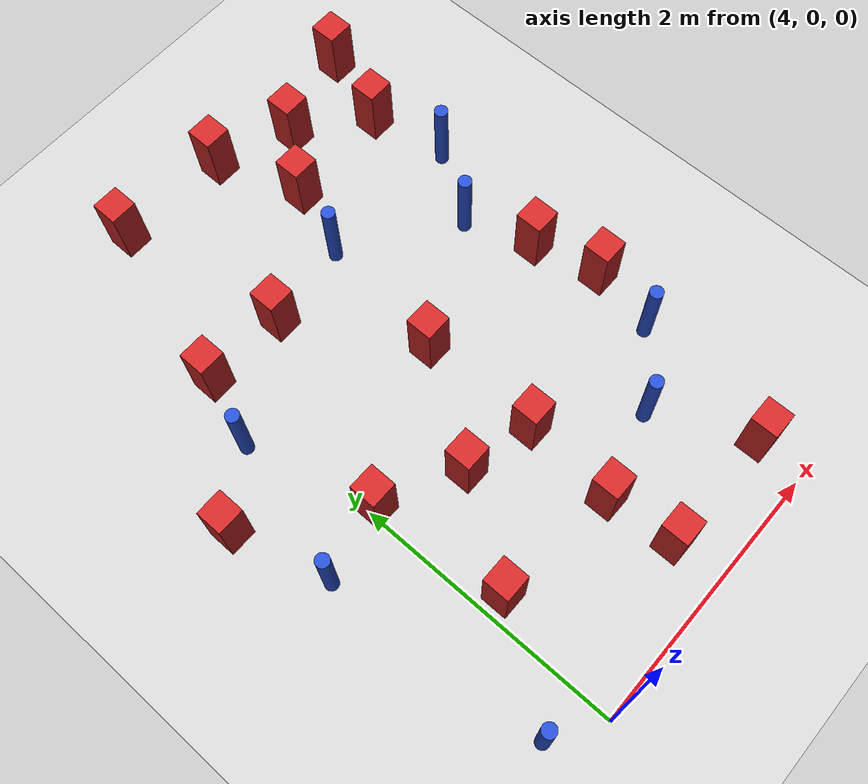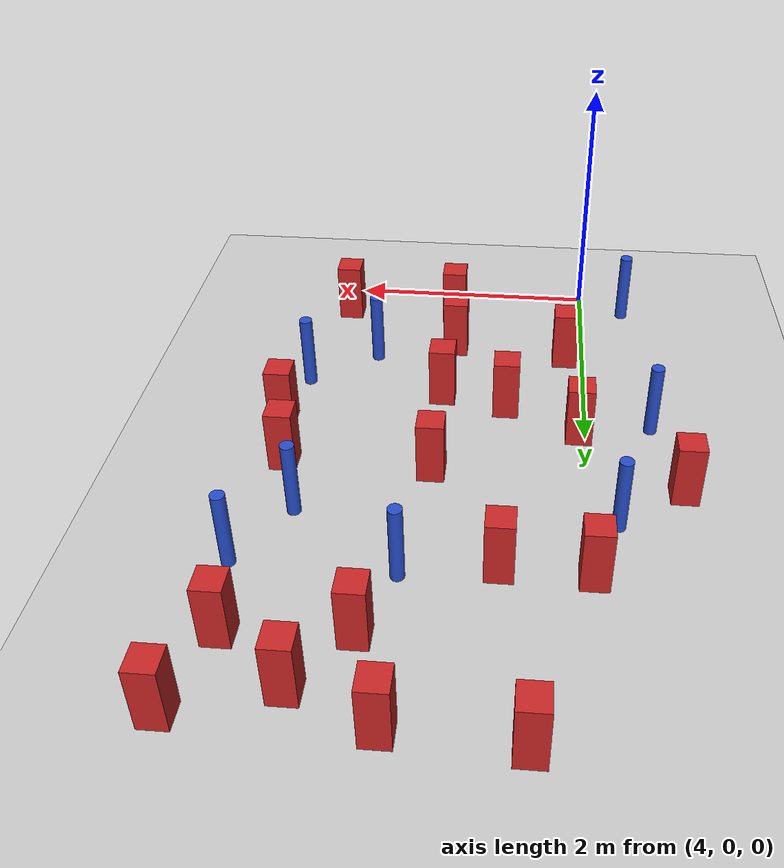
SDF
<sdf version="1.6">
 <world name="default">
  <model name="ground_plane">
   <static>1</static>
   <link name="link">
    <collision name="collision">
     <geometry><plane><normal>0 0 1</normal><size>100 100</size></plane></geometry>
     <surface><friction><ode><mu>100</mu><mu2>50</mu2></ode></friction></surface>
    </collision>
    <visual name="visual">
     <cast_shadows>0</cast_shadows>
     <geometry><plane><normal>0 0 1</normal><size>100 100</size></plane></geometry>
     <material>
      <ambient>1.0 1.0 1.0 1.0</ambient>
      <diffuse>0.8 0.8 0.8 1.0</diffuse>
      <specular>0.01 0.01 0.01 1.000000</specular>
     </material>
    </visual>
   </link>
  </model>
  <model name="square_post_obstacle8">
   <static>true</static>
   <pose>6.05506453243 0.368401354186 1.91545236811e-07 -7.35059704564e-06 1.12565212e-07 2.39332434364e-05</pose>
   <link name="link">
    <pose>0 0 0.25 0 -0 0</pose>
    <inertial>
     <mass>100</mass>
     <inertia>
      <ixx>0.166667</ixx>
      <ixy>0</ixy>
      <ixz>0</ixz>
      <iyy>0.166667</iyy>
      <iyz>0</iyz>
      <izz>0.166667</izz>
     </inertia>
    </inertial>
    <collision name="collision"><geometry><box><size>.2 .2 .5</size></box></geometry></collision>
    <visual name="visual">
     <geometry><box><size>.2 .2 .5</size></box></geometry>
     <material>
      <script><name>Gazebo/Red</name><uri>file://media/materials/scripts/gazebo.material</uri></script>
     </material>
    </visual>
   </link>
  </model>
  <model name="pole_obstacle36">
   <static>true</static>
   <pose>3.79349859983 2.92689420763 7.38925637345e-09 -8.47170692798e-08 1.24976764939e-08 -1.74513093025e-07</pose>
   <link name="link">
    <pose>0 0 0.3 0 -0 0</pose>
    <inertial>
     <mass>1</mass>
     <inertia><ixx>0.145833</ixx><ixy>0</ixy><ixz>0</ixz><iyy>0.145833</iyy><iyz>0</iyz><izz>0.125</izz></inertia>
    </inertial>
    <collision name="collision">
     <geometry><cylinder><radius>0.05</radius><length>.6</length></cylinder></geometry>
    </collision>
    <visual name="visual">
     <geometry><cylinder><radius>0.05</radius><length>.6</length></cylinder></geometry>
     <material>
      <script><name>Gazebo/Blue</name><uri>file://media/materials/scripts/gazebo.material</uri></script>
     </material>
    </visual>
   </link>
  </model>
  <model name="pole_obstacle45">
   <static>true</static>
   <pose>6.23284091133 1.44103149627 7.38925637345e-09 -8.471706928e-08 1.24976765134e-08 -1.74513093015e-07</pose>
   <link name="link">
    <pose>0 0 0.3 0 -0 0</pose>
    <inertial>
     <mass>1</mass>
     <inertia><ixx>0.145833</ixx><ixy>0</ixy><ixz>0</ixz><iyy>0.145833</iyy><iyz>0</iyz><izz>0.125</izz></inertia>
    </inertial>
    <collision name="collision">
     <geometry><cylinder><radius>0.05</radius><length>.6</length></cylinder></geometry>
    </collision>
    <visual name="visual">
     <geometry><cylinder><radius>0.05</radius><length>.6</length></cylinder></geometry>
     <material>
      <script><name>Gazebo/Blue</name><uri>file://media/materials/scripts/gazebo.material</uri></script>
     </material>
    </visual>
   </link>
  </model>
  <model name="square_post_obstacle39">
   <static>true</static>
   <pose>5.21998832689 4.64930276739 1.91545236811e-07 -7.35059704564e-06 1.12565212e-07 2.39332434364e-05</pose>
   <link name="link">
    <pose>0 0 0.25 0 -0 0</pose>
    <inertial>
     <mass>100</mass>
     <inertia>
      <ixx>0.166667</ixx>
      <ixy>0</ixy>
      <ixz>0</ixz>
      <iyy>0.166667</iyy>
      <iyz>0</iyz>
      <izz>0.166667</izz>
     </inertia>
    </inertial>
    <collision name="collision"><geometry><box><size>.2 .2 .5</size></box></geometry></collision>
    <visual name="visual">
     <geometry><box><size>.2 .2 .5</size></box></geometry>
     <material>
      <script><name>Gazebo/Red</name><uri>file://media/materials/scripts/gazebo.material</uri></script>
     </material>
    </visual>
   </link>
  </model>
  <model name="square_post_obstacle41">
   <static>true</static>
   <pose>4.59716601824 3.40265601159 1.91545236811e-07 -7.35059704564e-06 1.12565212e-07 2.39332434364e-05</pose>
   <link name="link">
    <pose>0 0 0.25 0 -0 0</pose>
    <inertial>
     <mass>100</mass>
     <inertia>
      <ixx>0.166667</ixx>
      <ixy>0</ixy>
      <ixz>0</ixz>
      <iyy>0.166667</iyy>
      <iyz>0</iyz>
      <izz>0.166667</izz>
     </inertia>
    </inertial>
    <collision name="collision"><geometry><box><size>.2 .2 .5</size></box></geometry></collision>
    <visual name="visual">
     <geometry><box><size>.2 .2 .5</size></box></geometry>
     <material>
      <script><name>Gazebo/Red</name><uri>file://media/materials/scripts/gazebo.material</uri></script>
     </material>
    </visual>
   </link>
  </model>
  <model name="square_post_obstacle51">
   <static>true</static>
   <pose>5.13246928677 2.47707967401 1.91545236811e-07 -7.35059704564e-06 1.12565212e-07 2.39332434364e-05</pose>
   <link name="link">
    <pose>0 0 0.25 0 -0 0</pose>
    <inertial>
     <mass>100</mass>
     <inertia>
      <ixx>0.166667</ixx>
      <ixy>0</ixy>
      <ixz>0</ixz>
      <iyy>0.166667</iyy>
      <iyz>0</iyz>
      <izz>0.166667</izz>
     </inertia>
    </inertial>
    <collision name="collision"><geometry><box><size>.2 .2 .5</size></box></geometry></collision>
    <visual name="visual">
     <geometry><box><size>.2 .2 .5</size></box></geometry>
     <material>
      <script><name>Gazebo/Red</name><uri>file://media/materials/scripts/gazebo.material</uri></script>
     </material>
    </visual>
   </link>
  </model>
  <model name="square_post_obstacle55">
   <static>true</static>
   <pose>4.05338056155 1.98004612645 1.91545236811e-07 -7.35059704564e-06 1.12565212e-07 2.39332434364e-05</pose>
   <link name="link">
    <pose>0 0 0.25 0 -0 0</pose>
    <inertial>
     <mass>100</mass>
     <inertia>
      <ixx>0.166667</ixx>
      <ixy>0</ixy>
      <ixz>0</ixz>
      <iyy>0.166667</iyy>
      <iyz>0</iyz>
      <izz>0.166667</izz>
     </inertia>
    </inertial>
    <collision name="collision"><geometry><box><size>.2 .2 .5</size></box></geometry></collision>
    <visual name="visual">
     <geometry><box><size>.2 .2 .5</size></box></geometry>
     <material>
      <script><name>Gazebo/Red</name><uri>file://media/materials/scripts/gazebo.material</uri></script>
     </material>
    </visual>
   </link>
  </model>
  <model name="square_post_obstacle58">
   <static>true</static>
   <pose>6.34560710064 1.94424547865 1.91545236811e-07 -7.35059704564e-06 1.12565212e-07 2.39332434364e-05</pose>
   <link name="link">
    <pose>0 0 0.25 0 -0 0</pose>
    <inertial>
     <mass>100</mass>
     <inertia>
      <ixx>0.166667</ixx>
      <ixy>0</ixy>
      <ixz>0</ixz>
      <iyy>0.166667</iyy>
      <iyz>0</iyz>
      <izz>0.166667</izz>
     </inertia>
    </inertial>
    <collision name="collision"><geometry><box><size>.2 .2 .5</size></box></geometry></collision>
    <visual name="visual">
     <geometry><box><size>.2 .2 .5</size></box></geometry>
     <material>
      <script><name>Gazebo/Red</name><uri>file://media/materials/scripts/gazebo.material</uri></script>
     </material>
    </visual>
   </link>
  </model>
  <model name="square_post_obstacle60">
   <static>true</static>
   <pose>6.22812129086 2.44280715354 1.91545236811e-07 -7.35059704564e-06 1.12565212e-07 2.39332434364e-05</pose>
   <link name="link">
    <pose>0 0 0.25 0 -0 0</pose>
    <inertial>
     <mass>100</mass>
     <inertia>
      <ixx>0.166667</ixx>
      <ixy>0</ixy>
      <ixz>0</ixz>
      <iyy>0.166667</iyy>
      <iyz>0</iyz>
      <izz>0.166667</izz>
     </inertia>
    </inertial>
    <collision name="collision"><geometry><box><size>.2 .2 .5</size></box></geometry></collision>
    <visual name="visual">
     <geometry><box><size>.2 .2 .5</size></box></geometry>
     <material>
      <script><name>Gazebo/Red</name><uri>file://media/materials/scripts/gazebo.material</uri></script>
     </material>
    </visual>
   </link>
  </model>
  <model name="square_post_obstacle61">
   <static>true</static>
   <pose>6.28039331181 4.05074198997 1.91545236811e-07 -7.35059704564e-06 1.12565212e-07 2.39332434364e-05</pose>
   <link name="link">
    <pose>0 0 0.25 0 -0 0</pose>
    <inertial>
     <mass>100</mass>
     <inertia>
      <ixx>0.166667</ixx>
      <ixy>0</ixy>
      <ixz>0</ixz>
      <iyy>0.166667</iyy>
      <iyz>0</iyz>
      <izz>0.166667</izz>
     </inertia>
    </inertial>
    <collision name="collision"><geometry><box><size>.2 .2 .5</size></box></geometry></collision>
    <visual name="visual">
     <geometry><box><size>.2 .2 .5</size></box></geometry>
     <material>
      <script><name>Gazebo/Red</name><uri>file://media/materials/scripts/gazebo.material</uri></script>
     </material>
    </visual>
   </link>
  </model>
  <model name="pole_obstacle82">
   <static>true</static>
   <pose>3.4986279685 1.86415683768 7.38925637345e-09 -8.471706928e-08 1.24976765152e-08 -1.74513093012e-07</pose>
   <link name="link">
    <pose>0 0 0.3 0 -0 0</pose>
    <inertial>
     <mass>1</mass>
     <inertia><ixx>0.145833</ixx><ixy>0</ixy><ixz>0</ixz><iyy>0.145833</iyy><iyz>0</iyz><izz>0.125</izz></inertia>
    </inertial>
    <collision name="collision">
     <geometry><cylinder><radius>0.05</radius><length>.6</length></cylinder></geometry>
    </collision>
    <visual name="visual">
     <geometry><cylinder><radius>0.05</radius><length>.6</length></cylinder></geometry>
     <material>
      <script><name>Gazebo/Blue</name><uri>file://media/materials/scripts/gazebo.material</uri></script>
     </material>
    </visual>
   </link>
  </model>
  <model name="square_post_obstacle84">
   <static>true</static>
   <pose>5.12848473698 1.56891961007 1.91545236811e-07 -7.35059704564e-06 1.12565212e-07 2.39332434364e-05</pose>
   <link name="link">
    <pose>0 0 0.25 0 -0 0</pose>
    <inertial>
     <mass>100</mass>
     <inertia>
      <ixx>0.166667</ixx>
      <ixy>0</ixy>
      <ixz>0</ixz>
      <iyy>0.166667</iyy>
      <iyz>0</iyz>
      <izz>0.166667</izz>
     </inertia>
    </inertial>
    <collision name="collision"><geometry><box><size>.2 .2 .5</size></box></geometry></collision>
    <visual name="visual">
     <geometry><box><size>.2 .2 .5</size></box></geometry>
     <material>
      <script><name>Gazebo/Red</name><uri>file://media/materials/scripts/gazebo.material</uri></script>
     </material>
    </visual>
   </link>
  </model>
  <model name="pole_obstacle107">
   <static>true</static>
   <pose>5.72319153716 1.0579496729 7.38925637345e-09 -8.471706928e-08 1.24976765134e-08 -1.74513093015e-07</pose>
   <link name="link">
    <pose>0 0 0.3 0 -0 0</pose>
    <inertial>
     <mass>1</mass>
     <inertia><ixx>0.145833</ixx><ixy>0</ixy><ixz>0</ixz><iyy>0.145833</iyy><iyz>0</iyz><izz>0.125</izz></inertia>
    </inertial>
    <collision name="collision">
     <geometry><cylinder><radius>0.05</radius><length>.6</length></cylinder></geometry>
    </collision>
    <visual name="visual">
     <geometry><cylinder><radius>0.05</radius><length>.6</length></cylinder></geometry>
     <material>
      <script><name>Gazebo/Blue</name><uri>file://media/materials/scripts/gazebo.material</uri></script>
     </material>
    </visual>
   </link>
  </model>
  <model name="square_post_obstacle108">
   <static>true</static>
   <pose>5.44771622154 4.00115317048 1.91545236811e-07 -7.35059704564e-06 1.12565212e-07 2.39332434364e-05</pose>
   <link name="link">
    <pose>0 0 0.25 0 -0 0</pose>
    <inertial>
     <mass>100</mass>
     <inertia>
      <ixx>0.166667</ixx>
      <ixy>0</ixy>
      <ixz>0</ixz>
      <iyy>0.166667</iyy>
      <iyz>0</iyz>
      <izz>0.166667</izz>
     </inertia>
    </inertial>
    <collision name="collision"><geometry><box><size>.2 .2 .5</size></box></geometry></collision>
    <visual name="visual">
     <geometry><box><size>.2 .2 .5</size></box></geometry>
     <material>
      <script><name>Gazebo/Red</name><uri>file://media/materials/scripts/gazebo.material</uri></script>
     </material>
    </visual>
   </link>
  </model>
  <model name="pole_obstacle115">
   <static>true</static>
   <pose>6.05218838079 2.95087385496 7.38925637345e-09 -8.47170692798e-08 1.24976764937e-08 -1.74513093023e-07</pose>
   <link name="link">
    <pose>0 0 0.3 0 -0 0</pose>
    <inertial>
     <mass>1</mass>
     <inertia><ixx>0.145833</ixx><ixy>0</ixy><ixz>0</ixz><iyy>0.145833</iyy><iyz>0</iyz><izz>0.125</izz></inertia>
    </inertial>
    <collision name="collision">
     <geometry><cylinder><radius>0.05</radius><length>.6</length></cylinder></geometry>
    </collision>
    <visual name="visual">
     <geometry><cylinder><radius>0.05</radius><length>.6</length></cylinder></geometry>
     <material>
      <script><name>Gazebo/Blue</name><uri>file://media/materials/scripts/gazebo.material</uri></script>
     </material>
    </visual>
   </link>
  </model>
  <model name="square_post_obstacle113">
   <static>true</static>
   <pose>5.12426211553 0.378596422547 1.91545236811e-07 -7.35059704564e-06 1.12565212e-07 2.39332434364e-05</pose>
   <link name="link">
    <pose>0 0 0.25 0 -0 0</pose>
    <inertial>
     <mass>100</mass>
     <inertia>
      <ixx>0.166667</ixx>
      <ixy>0</ixy>
      <ixz>0</ixz>
      <iyy>0.166667</iyy>
      <iyz>0</iyz>
      <izz>0.166667</izz>
     </inertia>
    </inertial>
    <collision name="collision"><geometry><box><size>.2 .2 .5</size></box></geometry></collision>
    <visual name="visual">
     <geometry><box><size>.2 .2 .5</size></box></geometry>
     <material>
      <script><name>Gazebo/Red</name><uri>file://media/materials/scripts/gazebo.material</uri></script>
     </material>
    </visual>
   </link>
  </model>
  <model name="square_post_obstacle114">
   <static>true</static>
   <pose>4.36871104881 4.69713074803 1.91545236811e-07 -7.35059704564e-06 1.12565212e-07 2.39332434364e-05</pose>
   <link name="link">
    <pose>0 0 0.25 0 -0 0</pose>
    <inertial>
     <mass>100</mass>
     <inertia>
      <ixx>0.166667</ixx>
      <ixy>0</ixy>
      <ixz>0</ixz>
      <iyy>0.166667</iyy>
      <iyz>0</iyz>
      <izz>0.166667</izz>
     </inertia>
    </inertial>
    <collision name="collision"><geometry><box><size>.2 .2 .5</size></box></geometry></collision>
    <visual name="visual">
     <geometry><box><size>.2 .2 .5</size></box></geometry>
     <material>
      <script><name>Gazebo/Red</name><uri>file://media/materials/scripts/gazebo.material</uri></script>
     </material>
    </visual>
   </link>
  </model>
  <model name="square_post_obstacle115">
   <static>true</static>
   <pose>3.31583319987 2.5744230659 1.91545236811e-07 -7.35059704564e-06 1.12565212e-07 2.39332434364e-05</pose>
   <link name="link">
    <pose>0 0 0.25 0 -0 0</pose>
    <inertial>
     <mass>100</mass>
     <inertia>
      <ixx>0.166667</ixx>
      <ixy>0</ixy>
      <ixz>0</ixz>
      <iyy>0.166667</iyy>
      <iyz>0</iyz>
      <izz>0.166667</izz>
     </inertia>
    </inertial>
    <collision name="collision"><geometry><box><size>.2 .2 .5</size></box></geometry></collision>
    <visual name="visual">
     <geometry><box><size>.2 .2 .5</size></box></geometry>
     <material>
      <script><name>Gazebo/Red</name><uri>file://media/materials/scripts/gazebo.material</uri></script>
     </material>
    </visual>
   </link>
  </model>
  <model name="square_post_obstacle116">
   <static>true</static>
   <pose>5.78811146953 4.42310288406 1.91545236811e-07 -7.35059704564e-06 1.12565212e-07 2.39332434364e-05</pose>
   <link name="link">
    <pose>0 0 0.25 0 -0 0</pose>
    <inertial>
     <mass>100</mass>
     <inertia>
      <ixx>0.166667</ixx>
      <ixy>0</ixy>
      <ixz>0</ixz>
      <iyy>0.166667</iyy>
      <iyz>0</iyz>
      <izz>0.166667</izz>
     </inertia>
    </inertial>
    <collision name="collision"><geometry><box><size>.2 .2 .5</size></box></geometry></collision>
    <visual name="visual">
     <geometry><box><size>.2 .2 .5</size></box></geometry>
     <material>
      <script><name>Gazebo/Red</name><uri>file://media/materials/scripts/gazebo.material</uri></script>
     </material>
    </visual>
   </link>
  </model>
  <model name="square_post_obstacle129">
   <static>true</static>
   <pose>6.47381973206 4.63207363439 1.91545236811e-07 -7.35059704564e-06 1.12565212e-07 2.39332434364e-05</pose>
   <link name="link">
    <pose>0 0 0.25 0 -0 0</pose>
    <inertial>
     <mass>100</mass>
     <inertia>
      <ixx>0.166667</ixx>
      <ixy>0</ixy>
      <ixz>0</ixz>
      <iyy>0.166667</iyy>
      <iyz>0</iyz>
      <izz>0.166667</izz>
     </inertia>
    </inertial>
    <collision name="collision"><geometry><box><size>.2 .2 .5</size></box></geometry></collision>
    <visual name="visual">
     <geometry><box><size>.2 .2 .5</size></box></geometry>
     <material>
      <script><name>Gazebo/Red</name><uri>file://media/materials/scripts/gazebo.material</uri></script>
     </material>
    </visual>
   </link>
  </model>
  <model name="pole_obstacle164">
   <static>true</static>
   <pose>3.63328639066 0.237684599191 7.38925637345e-09 -8.471706928e-08 1.24976765149e-08 -1.74513093013e-07</pose>
   <link name="link">
    <pose>0 0 0.3 0 -0 0</pose>
    <inertial>
     <mass>1</mass>
     <inertia><ixx>0.145833</ixx><ixy>0</ixy><ixz>0</ixz><iyy>0.145833</iyy><iyz>0</iyz><izz>0.125</izz></inertia>
    </inertial>
    <collision name="collision">
     <geometry><cylinder><radius>0.05</radius><length>.6</length></cylinder></geometry>
    </collision>
    <visual name="visual">
     <geometry><cylinder><radius>0.05</radius><length>.6</length></cylinder></geometry>
     <material>
      <script><name>Gazebo/Blue</name><uri>file://media/materials/scripts/gazebo.material</uri></script>
     </material>
    </visual>
   </link>
  </model>
  <model name="square_post_obstacle166">
   <static>true</static>
   <pose>3.97849218478 3.42334711225 1.91545236811e-07 -7.35059704564e-06 1.12565212e-07 2.39332434364e-05</pose>
   <link name="link">
    <pose>0 0 0.25 0 -0 0</pose>
    <inertial>
     <mass>100</mass>
     <inertia>
      <ixx>0.166667</ixx>
      <ixy>0</ixy>
      <ixz>0</ixz>
      <iyy>0.166667</iyy>
      <iyz>0</iyz>
      <izz>0.166667</izz>
     </inertia>
    </inertial>
    <collision name="collision"><geometry><box><size>.2 .2 .5</size></box></geometry></collision>
    <visual name="visual">
     <geometry><box><size>.2 .2 .5</size></box></geometry>
     <material>
      <script><name>Gazebo/Red</name><uri>file://media/materials/scripts/gazebo.material</uri></script>
     </material>
    </visual>
   </link>
  </model>
  <model name="square_post_obstacle168">
   <static>true</static>
   <pose>4.15227731606 0.984043653038 1.91545236811e-07 -7.35059704564e-06 1.12565212e-07 2.39332434364e-05</pose>
   <link name="link">
    <pose>0 0 0.25 0 -0 0</pose>
    <inertial>
     <mass>100</mass>
     <inertia>
      <ixx>0.166667</ixx>
      <ixy>0</ixy>
      <ixz>0</ixz>
      <iyy>0.166667</iyy>
      <iyz>0</iyz>
      <izz>0.166667</izz>
     </inertia>
    </inertial>
    <collision name="collision"><geometry><box><size>.2 .2 .5</size></box></geometry></collision>
    <visual name="visual">
     <geometry><box><size>.2 .2 .5</size></box></geometry>
     <material>
      <script><name>Gazebo/Red</name><uri>file://media/materials/scripts/gazebo.material</uri></script>
     </material>
    </visual>
   </link>
  </model>
  <model name="square_post_obstacle180">
   <static>true</static>
   <pose>4.6198748101 1.69487125774 1.91545236811e-07 -7.35059704564e-06 1.12565212e-07 2.39332434364e-05</pose>
   <link name="link">
    <pose>0 0 0.25 0 -0 0</pose>
    <inertial>
     <mass>100</mass>
     <inertia>
      <ixx>0.166667</ixx>
      <ixy>0</ixy>
      <ixz>0</ixz>
      <iyy>0.166667</iyy>
      <iyz>0</iyz>
      <izz>0.166667</izz>
     </inertia>
    </inertial>
    <collision name="collision"><geometry><box><size>.2 .2 .5</size></box></geometry></collision>
    <visual name="visual">
     <geometry><box><size>.2 .2 .5</size></box></geometry>
     <material>
      <script><name>Gazebo/Red</name><uri>file://media/materials/scripts/gazebo.material</uri></script>
     </material>
    </visual>
   </link>
  </model>
  <model name="square_post_obstacle186">
   <static>true</static>
   <pose>5.07642751693 0.878764621672 1.91545236811e-07 -7.35059704564e-06 1.12565212e-07 2.39332434364e-05</pose>
   <link name="link">
    <pose>0 0 0.25 0 -0 0</pose>
    <inertial>
     <mass>100</mass>
     <inertia>
      <ixx>0.166667</ixx>
      <ixy>0</ixy>
      <ixz>0</ixz>
      <iyy>0.166667</iyy>
      <iyz>0</iyz>
      <izz>0.166667</izz>
     </inertia>
    </inertial>
    <collision name="collision"><geometry><box><size>.2 .2 .5</size></box></geometry></collision>
    <visual name="visual">
     <geometry><box><size>.2 .2 .5</size></box></geometry>
     <material>
      <script><name>Gazebo/Red</name><uri>file://media/materials/scripts/gazebo.material</uri></script>
     </material>
    </visual>
   </link>
  </model>
  <model name="pole_obstacle190">
   <static>true</static>
   <pose>5.25476418985 3.49097543717 7.38925637345e-09 -8.47170692798e-08 1.24976764937e-08 -1.74513093023e-07</pose>
   <link name="link">
    <pose>0 0 0.3 0 -0 0</pose>
    <inertial>
     <mass>1</mass>
     <inertia><ixx>0.145833</ixx><ixy>0</ixy><ixz>0</ixz><iyy>0.145833</iyy><iyz>0</iyz><izz>0.125</izz></inertia>
    </inertial>
    <collision name="collision">
     <geometry><cylinder><radius>0.05</radius><length>.6</length></cylinder></geometry>
    </collision>
    <visual name="visual">
     <geometry><cylinder><radius>0.05</radius><length>.6</length></cylinder></geometry>
     <material>
      <script><name>Gazebo/Blue</name><uri>file://media/materials/scripts/gazebo.material</uri></script>
     </material>
    </visual>
   </link>
  </model>
  <model name="pole_obstacle210">
   <static>true</static>
   <pose>6.38349605055 3.46090703824 7.38925637345e-09 -8.47170692798e-08 1.24976764937e-08 -1.74513093023e-07</pose>
   <link name="link">
    <pose>0 0 0.3 0 -0 0</pose>
    <inertial>
     <mass>1</mass>
     <inertia><ixx>0.145833</ixx><ixy>0</ixy><ixz>0</ixz><iyy>0.145833</iyy><iyz>0</iyz><izz>0.125</izz></inertia>
    </inertial>
    <collision name="collision">
     <geometry><cylinder><radius>0.05</radius><length>.6</length></cylinder></geometry>
    </collision>
    <visual name="visual">
     <geometry><cylinder><radius>0.05</radius><length>.6</length></cylinder></geometry>
     <material>
      <script><name>Gazebo/Blue</name><uri>file://media/materials/scripts/gazebo.material</uri></script>
     </material>
    </visual>
   </link>
  </model>
 </world>
</sdf>
